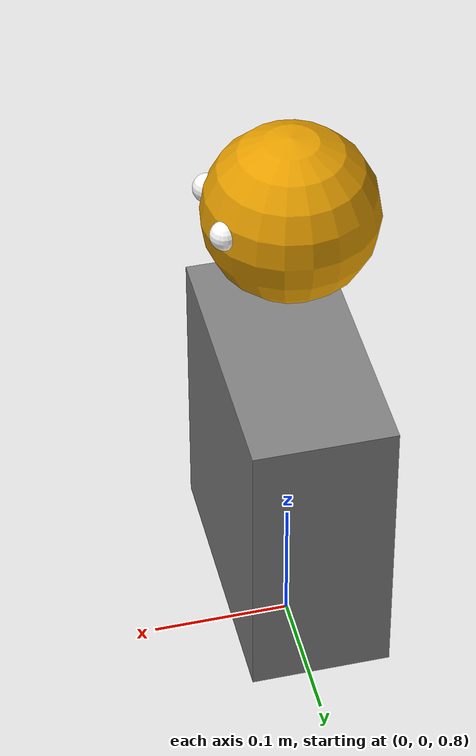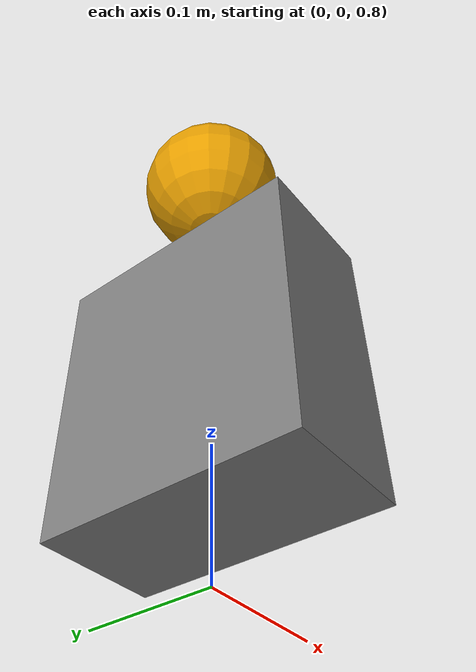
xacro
<?xml version="1.0" ?>
<robot xmlns:xacro="http://www.ros.org/wiki/xacro" name="test_orbita3d">

  <xacro:arg name="use_fake_hardware" default="false"/>
  <xacro:arg name="use_gazebo" default="false"/>

  <xacro:include filename="$(find pollen_generic_description)/urdf/inertial_primitives.urdf.xacro"/>
  <xacro:include filename="$(find orbita3d_description)/urdf/orbita3d.urdf.xacro"/>

  <!-- Orbita3d config -->
  <xacro:arg name="config_file" default="$(find orbita3d_description)/config/fake_neck.yaml"/>

  <!-- MODEL PARAMETERS -->
  <xacro:property name="base_collision" value="true"/>
  <xacro:property name="base_visual" value="true"/>
  <xacro:property name="damping" value="0.1"/>
  <xacro:property name="friction" value="0.1"/>

  <xacro:property name="neck_length" value="0.05"/>
  <xacro:property name="neck_radius" value="0.03"/>
  <xacro:property name="neck_mass" value="0.5"/>
  <xacro:property name="neck_offset_x" value="0"/>
  <xacro:property name="neck_offset_y" value="0"/>
  <xacro:property name="neck_offset_z" value="0.08"/>
  <xacro:property name="neck_offset_yaw" value="0.0"/>

  <!-- MODEL PARAMETERS -->

    <material name="torsoblack">
        <color rgba="0.5 0.5 0.5 1.0"/>
    </material>

    <material name="eyewhite">
        <color rgba="1.0 1.0 1.0 1.0"/>
    </material>

  <link name="world"/>
  <joint name="world_joint" type="fixed">
    <origin xyz="0 0 1.0" rpy="0 0 0"/>
    <parent link="world"/>
    <child link="torso"/>
  </joint>

  <!-- TORSO -->
  <link name="torso">
    <xacro:if value="${base_collision}">
      <collision>
        <origin xyz="0 0 -0.5" rpy="0 0 0"/>
        <geometry>
          <cylinder length="1" radius="0.03"/>
        </geometry>
      </collision>
    </xacro:if>
    <xacro:if value="${base_visual}">
      <visual>
        <origin xyz="0.0 0 -0.05" rpy="0 0.0 0"/>
        <geometry>
          <box size="0.1 0.2 0.22"/>
        </geometry>
        <material name="torsoblack"/>
      </visual>
    </xacro:if>
    <xacro:inertial_cuboid mass="10" xyz="0 0 0.5"  rpy="0 0 0" x_length="0.05" y_length="0.05" z_length="1"/>
  </link>
  <gazebo reference="torso">
    <material>Gazebo/Black</material>
    <static>true</static>
  </gazebo>
  <!-- TORSO -->

  <!-- Neck style Orbita3d -->
  <xacro:orbita3d
    name="neck" parent="torso"
    length="${neck_length}" radius="${neck_radius}" mass="${neck_mass}"
    xyz="${neck_offset_x} ${neck_offset_y} ${neck_offset_z}" rpy="0 0 ${neck_offset_yaw}"
    damping="${damping}" friction="${friction}"
    config_file="$(arg config_file)"
  />

  <link name="tip">
    <visual>
      <origin xyz="0 0 0" rpy="0 0.0 0"/>
      <geometry>
          <sphere radius="0.06"/>
      </geometry>
    </visual>
  </link>
  <joint name="tip_joint" type="fixed">
    <origin xyz="0 0 0.1" rpy="0 0 0"/>
    <parent link="neck_ball_link"/>
    <child link="tip"/>
  </joint>

  <link name="leye">
    <visual>
      <origin xyz="0 0 0" rpy="0 0.0 0"/>
      <geometry>
          <sphere radius="0.01"/>
      </geometry>
      <material name="eyewhite"/>
    </visual>
  </link>

  <link name="reye">
    <visual>
      <origin xyz="0 0 0" rpy="0 0.0 0"/>
      <geometry>
          <sphere radius="0.01"/>
      </geometry>
      <material name="eyewhite"/>
    </visual>
  </link>

  <joint name="leye_joint" type="fixed">
    <origin xyz="0.05 0.025 0.01" rpy="0 0 0"/>
    <parent link="tip"/>
    <child link="leye"/>
  </joint>

  <joint name="reye_joint" type="fixed">
    <origin xyz="0.05 -0.025 0.01" rpy="0 0 0"/>
    <parent link="tip"/>
    <child link="reye"/>
  </joint>

</robot>

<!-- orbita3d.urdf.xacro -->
<robot xmlns:xacro="http://www.ros.org/wiki/xacro">

  <xacro:include filename="$(find pollen_generic_description)/urdf/inertial_primitives.urdf.xacro"/>
  <xacro:include filename="$(find pollen_generic_description)/urdf/materials.urdf.xacro"/>
  <xacro:include filename="$(find orbita3d_description)/ros2_control/orbita3d.ros2_control.xacro"/>

  <xacro:macro name="orbita3d" params="name parent length radius mass xyz rpy damping friction config_file">

    <link name="${name}_dummy_link1">
      <xacro:inertial_cuboid mass="${mass*0.01}" xyz="0 0 0"  rpy="0 0 0" x_length="${radius*2}" y_length="${radius*2}" z_length="${length}">
      </xacro:inertial_cuboid>
    </link>

    <link name="${name}_dummy_link2">
      <xacro:inertial_cuboid mass="${mass*0.01}" xyz="0 0 0"  rpy="0 0 0" x_length="${radius*2}" y_length="${radius*2}" z_length="${length}">
      </xacro:inertial_cuboid>
    </link>

    <link name="${name}_link">

      <xacro:inertial_cuboid mass="${mass*0.98}" xyz="0 0 ${-length/2}"  rpy="0 0 0" x_length="${radius*2}" y_length="${radius*2}" z_length="${length}">
      </xacro:inertial_cuboid>
    </link>

    <link name="${name}_ball_link">

      <inertial>
        <origin xyz="0.0 0.0 0.0" rpy="0.0 0.0 0.0"/>
        <mass value="0.001"/>
        <inertia ixx="1.0e-6" ixy="1.0e-8" ixz="1.0e-8" iyy="1.0e-6" iyz="1.0e-8" izz="1.0e-6"/>
      </inertial>
    </link>

    <joint name="${name}_ball_joint" type="fixed">

      <origin xyz="0 0 0" rpy="0 0 0"/>
      <parent link="${name}_link"/>
      <child link="${name}_ball_link"/>
    </joint>

    <link name="${name}_base_link">
      <inertial>
        <origin xyz="0.0 0.0 0.0" rpy="0.0 0.0 0.0"/>
        <mass value="0.001"/>
        <inertia ixx="1.0e-6" ixy="1.0e-8" ixz="1.0e-8" iyy="1.0e-6" iyz="1.0e-8" izz="1.0e-6"/>
      </inertial>
    </link>

    <joint name="${name}_base_joint" type="fixed">

    <xacro:if value="${name == 'r_wrist'}">
      <origin xyz="${xyz}" rpy="3.141592 0 1.5707963267948966"/>
    </xacro:if>
    <xacro:if value="${name == 'l_wrist'}">
      <origin xyz="${xyz}" rpy="3.141592 0 1.5707963267948966"/>
    </xacro:if>
    <xacro:if value="${name == 'neck'}">
      <origin xyz="${xyz}" rpy="${rpy}"/>
    </xacro:if>

      <parent link="${parent}"/>
      <child link="${name}_base_link"/>
    </joint>

    <link name="${name}_out_link">
      <inertial>
        <origin xyz="0.0 0.0 0.0" rpy="0.0 0.0 0.0"/>
        <mass value="0.001"/>
        <inertia ixx="1.0e-6" ixy="1.0e-8" ixz="1.0e-8" iyy="1.0e-6" iyz="1.0e-8" izz="1.0e-6"/>
      </inertial>
    </link>

    <joint name="${name}_out_joint" type="fixed">

    <xacro:if value="${name == 'r_wrist'}">
      <origin xyz="0 0 0" rpy="3.141592 0 0"/>
    </xacro:if>
    <xacro:if value="${name == 'l_wrist'}">
      <origin xyz="0 0 0" rpy="3.141592 0 0"/>
    </xacro:if>
    <xacro:if value="${name == 'neck'}">
      <origin xyz="0 0 0" rpy="0 0 0"/>
    </xacro:if>

      <parent link="${name}_ball_link"/>
      <child link="${name}_out_link"/>
    </joint>

    <joint name="${name}_roll" type="revolute">
      <origin xyz="0 0 0" rpy="0 0 0"/>
      <parent link="${name}_base_link"/>

      <child link="${name}_dummy_link1"/>
      <axis xyz="1 0 0"/>
      <limit lower="-0.70" upper="0.70" effort="1000.0" velocity="100.0"/>
      <dynamics damping="${damping}" friction="${friction}"/>
    </joint>

    <joint name="${name}_pitch" type="revolute">
      <origin xyz="0 0 0" rpy="0 0 0"/>
      <parent link="${name}_dummy_link1"/>
      <child link="${name}_dummy_link2"/>
      <axis xyz="0 1 0"/>
      <limit lower="-0.70" upper="0.70" effort="1000.0" velocity="100.0"/>
      <dynamics damping="${damping}" friction="${friction}"/>
    </joint>

    <joint name="${name}_yaw" type="revolute">
      <origin xyz="0 0 0" rpy="0 0 0"/>
      <parent link="${name}_dummy_link2"/>
      <child link="${name}_link"/>
      <axis xyz="0 0 1"/>
      <limit lower="-1.57" upper="1.57" effort="1000.0" velocity="100.0"/>
      <dynamics damping="${damping}" friction="${friction}"/>
    </joint>

    <xacro:orbita3d_control
      name="${name}"
      config_file="${config_file}"
    />

  </xacro:macro>
</robot>
